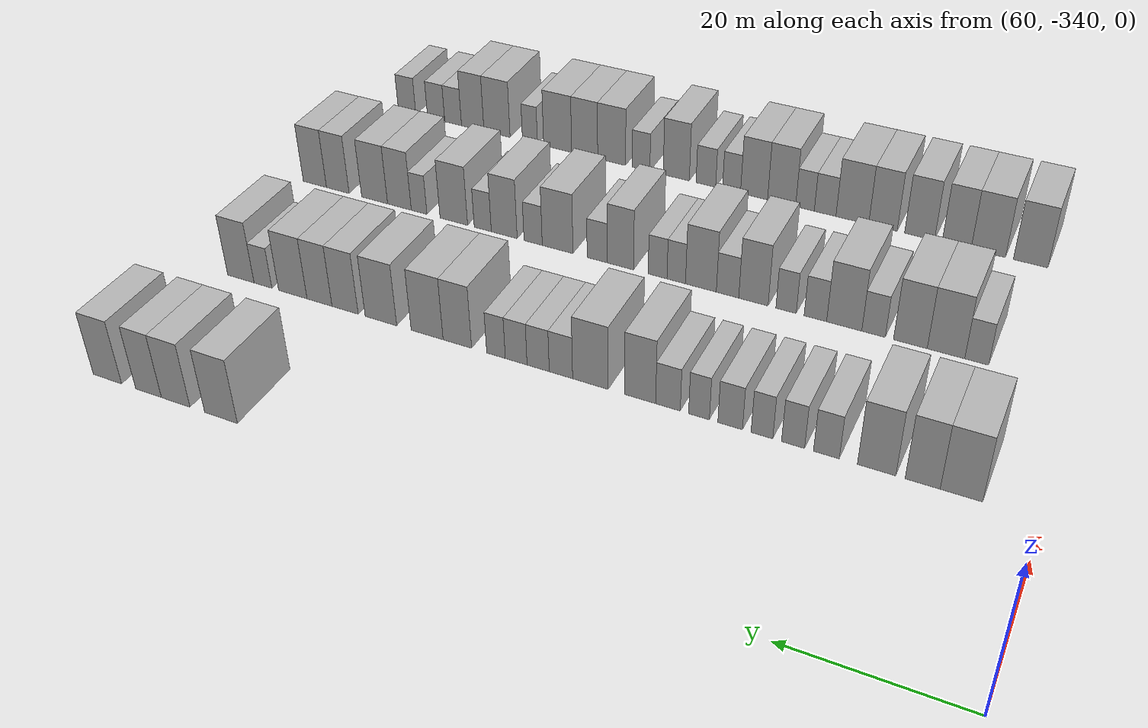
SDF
<sdf version="1.6">
 <world name="default">
  <model name="building_416">
   <static>1</static>
   <pose>69.0000 -254.4645 0 0.000000 0.000000 0.000000</pose>
   <link name="link">
    <pose>0 0 4.50 0 0 0</pose>
    <collision name="collision"><geometry><box><size>10.0000 4.4062 9.0000</size></box></geometry></collision>
    <visual name="visual">
     <cast_shadows>0</cast_shadows>
     <geometry><box><size>10.0000 4.4062 9.0000</size></box></geometry>
     <material>
      <script>
       <uri>model://HANNAS_wall/materials/scripts</uri>
       <uri>model://HANNAS_wall/materials/textures</uri>
       <name>vrc/HANNAS_wall</name>
      </script>
     </material>
    </visual>
   </link>
  </model>
  <model name="building_417">
   <static>1</static>
   <pose>69.0000 -248.2851 0 0.000000 0.000000 0.000000</pose>
   <link name="link">
    <pose>0 0 4.50 0 0 0</pose>
    <collision name="collision"><geometry><box><size>10.0000 3.9526 9.0000</size></box></geometry></collision>
    <visual name="visual">
     <cast_shadows>0</cast_shadows>
     <geometry><box><size>10.0000 3.9526 9.0000</size></box></geometry>
     <material>
      <script>
       <uri>model://HANNAS_wall/materials/scripts</uri>
       <uri>model://HANNAS_wall/materials/textures</uri>
       <name>vrc/HANNAS_wall</name>
      </script>
     </material>
    </visual>
   </link>
  </model>
  <model name="building_418">
   <static>1</static>
   <pose>69.0000 -244.5052 0 0.000000 0.000000 0.000000</pose>
   <link name="link">
    <pose>0 0 4.50 0 0 0</pose>
    <collision name="collision"><geometry><box><size>10.0000 3.6071 9.0000</size></box></geometry></collision>
    <visual name="visual">
     <cast_shadows>0</cast_shadows>
     <geometry><box><size>10.0000 3.6071 9.0000</size></box></geometry>
     <material>
      <script>
       <uri>model://HANNAS_wall/materials/scripts</uri>
       <uri>model://HANNAS_wall/materials/textures</uri>
       <name>vrc/HANNAS_wall</name>
      </script>
     </material>
    </visual>
   </link>
  </model>
  <model name="building_419">
   <static>1</static>
   <pose>69.0000 -238.6733 0 0.000000 0.000000 0.000000</pose>
   <link name="link">
    <pose>0 0 4.50 0 0 0</pose>
    <collision name="collision"><geometry><box><size>10.0000 4.0567 9.0000</size></box></geometry></collision>
    <visual name="visual">
     <cast_shadows>0</cast_shadows>
     <geometry><box><size>10.0000 4.0567 9.0000</size></box></geometry>
     <material>
      <script>
       <uri>model://HANNAS_wall/materials/scripts</uri>
       <uri>model://HANNAS_wall/materials/textures</uri>
       <name>vrc/HANNAS_wall</name>
      </script>
     </material>
    </visual>
   </link>
  </model>
  <model name="building_584">
   <static>1</static>
   <pose>91.0000 -331.6717 0 0.000000 0.000000 0.000000</pose>
   <link name="link">
    <pose>0 0 4.50 0 0 0</pose>
    <collision name="collision"><geometry><box><size>10.0000 4.4519 9.0000</size></box></geometry></collision>
    <visual name="visual">
     <cast_shadows>0</cast_shadows>
     <geometry><box><size>10.0000 4.4519 9.0000</size></box></geometry>
     <material>
      <script>
       <uri>model://HANNAS_wall/materials/scripts</uri>
       <uri>model://HANNAS_wall/materials/textures</uri>
       <name>vrc/HANNAS_wall</name>
      </script>
     </material>
    </visual>
   </link>
  </model>
  <model name="building_585">
   <static>1</static>
   <pose>91.0000 -327.5798 0 0.000000 0.000000 0.000000</pose>
   <link name="link">
    <pose>0 0 4.50 0 0 0</pose>
    <collision name="collision"><geometry><box><size>10.0000 3.7320 9.0000</size></box></geometry></collision>
    <visual name="visual">
     <cast_shadows>0</cast_shadows>
     <geometry><box><size>10.0000 3.7320 9.0000</size></box></geometry>
     <material>
      <script>
       <uri>model://HANNAS_wall/materials/scripts</uri>
       <uri>model://HANNAS_wall/materials/textures</uri>
       <name>vrc/HANNAS_wall</name>
      </script>
     </material>
    </visual>
   </link>
  </model>
  <model name="building_586">
   <static>1</static>
   <pose>91.0000 -322.6257 0 0.000000 0.000000 0.000000</pose>
   <link name="link">
    <pose>0 0 4.50 0 0 0</pose>
    <collision name="collision"><geometry><box><size>10.0000 4.1762 9.0000</size></box></geometry></collision>
    <visual name="visual">
     <cast_shadows>0</cast_shadows>
     <geometry><box><size>10.0000 4.1762 9.0000</size></box></geometry>
     <material>
      <script>
       <uri>model://HANNAS_wall/materials/scripts</uri>
       <uri>model://HANNAS_wall/materials/textures</uri>
       <name>vrc/HANNAS_wall</name>
      </script>
     </material>
    </visual>
   </link>
  </model>
  <model name="building_587">
   <static>1</static>
   <pose>91.0000 -317.0966 0 0.000000 0.000000 0.000000</pose>
   <link name="link">
    <pose>0 0 3.00 0 0 0</pose>
    <collision name="collision"><geometry><box><size>10.0000 2.8819 6.0000</size></box></geometry></collision>
    <visual name="visual">
     <cast_shadows>0</cast_shadows>
     <geometry><box><size>10.0000 2.8819 6.0000</size></box></geometry>
     <material>
      <script>
       <uri>model://HANNAS_wall/materials/scripts</uri>
       <uri>model://HANNAS_wall/materials/textures</uri>
       <name>vrc/HANNAS_wall</name>
      </script>
     </material>
    </visual>
   </link>
  </model>
  <model name="building_588">
   <static>1</static>
   <pose>91.0000 -313.3518 0 0.000000 0.000000 0.000000</pose>
   <link name="link">
    <pose>0 0 3.00 0 0 0</pose>
    <collision name="collision"><geometry><box><size>10.0000 2.6078 6.0000</size></box></geometry></collision>
    <visual name="visual">
     <cast_shadows>0</cast_shadows>
     <geometry><box><size>10.0000 2.6078 6.0000</size></box></geometry>
     <material>
      <script>
       <uri>model://HANNAS_wall/materials/scripts</uri>
       <uri>model://HANNAS_wall/materials/textures</uri>
       <name>vrc/HANNAS_wall</name>
      </script>
     </material>
    </visual>
   </link>
  </model>
  <model name="building_589">
   <static>1</static>
   <pose>91.0000 -309.8001 0 0.000000 0.000000 0.000000</pose>
   <link name="link">
    <pose>0 0 3.00 0 0 0</pose>
    <collision name="collision"><geometry><box><size>10.0000 2.4955 6.0000</size></box></geometry></collision>
    <visual name="visual">
     <cast_shadows>0</cast_shadows>
     <geometry><box><size>10.0000 2.4955 6.0000</size></box></geometry>
     <material>
      <script>
       <uri>model://HANNAS_wall/materials/scripts</uri>
       <uri>model://HANNAS_wall/materials/textures</uri>
       <name>vrc/HANNAS_wall</name>
      </script>
     </material>
    </visual>
   </link>
  </model>
  <model name="building_590">
   <static>1</static>
   <pose>91.0000 -306.1137 0 0.000000 0.000000 0.000000</pose>
   <link name="link">
    <pose>0 0 3.00 0 0 0</pose>
    <collision name="collision"><geometry><box><size>10.0000 2.8773 6.0000</size></box></geometry></collision>
    <visual name="visual">
     <cast_shadows>0</cast_shadows>
     <geometry><box><size>10.0000 2.8773 6.0000</size></box></geometry>
     <material>
      <script>
       <uri>model://HANNAS_wall/materials/scripts</uri>
       <uri>model://HANNAS_wall/materials/textures</uri>
       <name>vrc/HANNAS_wall</name>
      </script>
     </material>
    </visual>
   </link>
  </model>
  <model name="building_591">
   <static>1</static>
   <pose>91.0000 -302.4433 0 0.000000 0.000000 0.000000</pose>
   <link name="link">
    <pose>0 0 3.00 0 0 0</pose>
    <collision name="collision"><geometry><box><size>10.0000 2.4633 6.0000</size></box></geometry></collision>
    <visual name="visual">
     <cast_shadows>0</cast_shadows>
     <geometry><box><size>10.0000 2.4633 6.0000</size></box></geometry>
     <material>
      <script>
       <uri>model://HANNAS_wall/materials/scripts</uri>
       <uri>model://HANNAS_wall/materials/textures</uri>
       <name>vrc/HANNAS_wall</name>
      </script>
     </material>
    </visual>
   </link>
  </model>
  <model name="building_592">
   <static>1</static>
   <pose>91.0000 -298.7233 0 0.000000 0.000000 0.000000</pose>
   <link name="link">
    <pose>0 0 3.00 0 0 0</pose>
    <collision name="collision"><geometry><box><size>10.0000 2.9768 6.0000</size></box></geometry></collision>
    <visual name="visual">
     <cast_shadows>0</cast_shadows>
     <geometry><box><size>10.0000 2.9768 6.0000</size></box></geometry>
     <material>
      <script>
       <uri>model://HANNAS_wall/materials/scripts</uri>
       <uri>model://HANNAS_wall/materials/textures</uri>
       <name>vrc/HANNAS_wall</name>
      </script>
     </material>
    </visual>
   </link>
  </model>
  <model name="building_593">
   <static>1</static>
   <pose>91.0000 -295.3324 0 0.000000 0.000000 0.000000</pose>
   <link name="link">
    <pose>0 0 4.50 0 0 0</pose>
    <collision name="collision"><geometry><box><size>10.0000 3.8049 9.0000</size></box></geometry></collision>
    <visual name="visual">
     <cast_shadows>0</cast_shadows>
     <geometry><box><size>10.0000 3.8049 9.0000</size></box></geometry>
     <material>
      <script>
       <uri>model://HANNAS_wall/materials/scripts</uri>
       <uri>model://HANNAS_wall/materials/textures</uri>
       <name>vrc/HANNAS_wall</name>
      </script>
     </material>
    </visual>
   </link>
  </model>
  <model name="building_594">
   <static>1</static>
   <pose>91.0000 -289.1933 0 0.000000 0.000000 0.000000</pose>
   <link name="link">
    <pose>0 0 4.50 0 0 0</pose>
    <collision name="collision"><geometry><box><size>10.0000 4.4732 9.0000</size></box></geometry></collision>
    <visual name="visual">
     <cast_shadows>0</cast_shadows>
     <geometry><box><size>10.0000 4.4732 9.0000</size></box></geometry>
     <material>
      <script>
       <uri>model://HANNAS_wall/materials/scripts</uri>
       <uri>model://HANNAS_wall/materials/textures</uri>
       <name>vrc/HANNAS_wall</name>
      </script>
     </material>
    </visual>
   </link>
  </model>
  <model name="building_595">
   <static>1</static>
   <pose>91.0000 -285.4696 0 0.000000 0.000000 0.000000</pose>
   <link name="link">
    <pose>0 0 3.00 0 0 0</pose>
    <collision name="collision"><geometry><box><size>10.0000 2.9743 6.0000</size></box></geometry></collision>
    <visual name="visual">
     <cast_shadows>0</cast_shadows>
     <geometry><box><size>10.0000 2.9743 6.0000</size></box></geometry>
     <material>
      <script>
       <uri>model://HANNAS_wall/materials/scripts</uri>
       <uri>model://HANNAS_wall/materials/textures</uri>
       <name>vrc/HANNAS_wall</name>
      </script>
     </material>
    </visual>
   </link>
  </model>
  <model name="building_596">
   <static>1</static>
   <pose>91.0000 -282.5545 0 0.000000 0.000000 0.000000</pose>
   <link name="link">
    <pose>0 0 3.00 0 0 0</pose>
    <collision name="collision"><geometry><box><size>10.0000 2.8559 6.0000</size></box></geometry></collision>
    <visual name="visual">
     <cast_shadows>0</cast_shadows>
     <geometry><box><size>10.0000 2.8559 6.0000</size></box></geometry>
     <material>
      <script>
       <uri>model://HANNAS_wall/materials/scripts</uri>
       <uri>model://HANNAS_wall/materials/textures</uri>
       <name>vrc/HANNAS_wall</name>
      </script>
     </material>
    </visual>
   </link>
  </model>
  <model name="building_597">
   <static>1</static>
   <pose>91.0000 -279.7091 0 0.000000 0.000000 0.000000</pose>
   <link name="link">
    <pose>0 0 3.00 0 0 0</pose>
    <collision name="collision"><geometry><box><size>10.0000 2.8348 6.0000</size></box></geometry></collision>
    <visual name="visual">
     <cast_shadows>0</cast_shadows>
     <geometry><box><size>10.0000 2.8348 6.0000</size></box></geometry>
     <material>
      <script>
       <uri>model://HANNAS_wall/materials/scripts</uri>
       <uri>model://HANNAS_wall/materials/textures</uri>
       <name>vrc/HANNAS_wall</name>
      </script>
     </material>
    </visual>
   </link>
  </model>
  <model name="building_598">
   <static>1</static>
   <pose>91.0000 -277.0673 0 0.000000 0.000000 0.000000</pose>
   <link name="link">
    <pose>0 0 3.00 0 0 0</pose>
    <collision name="collision"><geometry><box><size>10.0000 2.4489 6.0000</size></box></geometry></collision>
    <visual name="visual">
     <cast_shadows>0</cast_shadows>
     <geometry><box><size>10.0000 2.4489 6.0000</size></box></geometry>
     <material>
      <script>
       <uri>model://HANNAS_wall/materials/scripts</uri>
       <uri>model://HANNAS_wall/materials/textures</uri>
       <name>vrc/HANNAS_wall</name>
      </script>
     </material>
    </visual>
   </link>
  </model>
  <model name="building_599">
   <static>1</static>
   <pose>91.0000 -271.9243 0 0.000000 0.000000 0.000000</pose>
   <link name="link">
    <pose>0 0 4.50 0 0 0</pose>
    <collision name="collision"><geometry><box><size>10.0000 3.8371 9.0000</size></box></geometry></collision>
    <visual name="visual">
     <cast_shadows>0</cast_shadows>
     <geometry><box><size>10.0000 3.8371 9.0000</size></box></geometry>
     <material>
      <script>
       <uri>model://HANNAS_wall/materials/scripts</uri>
       <uri>model://HANNAS_wall/materials/textures</uri>
       <name>vrc/HANNAS_wall</name>
      </script>
     </material>
    </visual>
   </link>
  </model>
  <model name="building_600">
   <static>1</static>
   <pose>91.0000 -267.8244 0 0.000000 0.000000 0.000000</pose>
   <link name="link">
    <pose>0 0 4.50 0 0 0</pose>
    <collision name="collision"><geometry><box><size>10.0000 4.3628 9.0000</size></box></geometry></collision>
    <visual name="visual">
     <cast_shadows>0</cast_shadows>
     <geometry><box><size>10.0000 4.3628 9.0000</size></box></geometry>
     <material>
      <script>
       <uri>model://HANNAS_wall/materials/scripts</uri>
       <uri>model://HANNAS_wall/materials/textures</uri>
       <name>vrc/HANNAS_wall</name>
      </script>
     </material>
    </visual>
   </link>
  </model>
  <model name="building_601">
   <static>1</static>
   <pose>91.0000 -261.4375 0 0.000000 0.000000 0.000000</pose>
   <link name="link">
    <pose>0 0 4.50 0 0 0</pose>
    <collision name="collision"><geometry><box><size>10.0000 4.4109 9.0000</size></box></geometry></collision>
    <visual name="visual">
     <cast_shadows>0</cast_shadows>
     <geometry><box><size>10.0000 4.4109 9.0000</size></box></geometry>
     <material>
      <script>
       <uri>model://HANNAS_wall/materials/scripts</uri>
       <uri>model://HANNAS_wall/materials/textures</uri>
       <name>vrc/HANNAS_wall</name>
      </script>
     </material>
    </visual>
   </link>
  </model>
  <model name="building_602">
   <static>1</static>
   <pose>91.0000 -256.3635 0 0.000000 0.000000 0.000000</pose>
   <link name="link">
    <pose>0 0 4.50 0 0 0</pose>
    <collision name="collision"><geometry><box><size>10.0000 3.7373 9.0000</size></box></geometry></collision>
    <visual name="visual">
     <cast_shadows>0</cast_shadows>
     <geometry><box><size>10.0000 3.7373 9.0000</size></box></geometry>
     <material>
      <script>
       <uri>model://HANNAS_wall/materials/scripts</uri>
       <uri>model://HANNAS_wall/materials/textures</uri>
       <name>vrc/HANNAS_wall</name>
      </script>
     </material>
    </visual>
   </link>
  </model>
  <model name="building_603">
   <static>1</static>
   <pose>91.0000 -252.6823 0 0.000000 0.000000 0.000000</pose>
   <link name="link">
    <pose>0 0 4.50 0 0 0</pose>
    <collision name="collision"><geometry><box><size>10.0000 3.6251 9.0000</size></box></geometry></collision>
    <visual name="visual">
     <cast_shadows>0</cast_shadows>
     <geometry><box><size>10.0000 3.6251 9.0000</size></box></geometry>
     <material>
      <script>
       <uri>model://HANNAS_wall/materials/scripts</uri>
       <uri>model://HANNAS_wall/materials/textures</uri>
       <name>vrc/HANNAS_wall</name>
      </script>
     </material>
    </visual>
   </link>
  </model>
  <model name="building_604">
   <static>1</static>
   <pose>91.0000 -248.7831 0 0.000000 0.000000 0.000000</pose>
   <link name="link">
    <pose>0 0 4.50 0 0 0</pose>
    <collision name="collision"><geometry><box><size>10.0000 4.1732 9.0000</size></box></geometry></collision>
    <visual name="visual">
     <cast_shadows>0</cast_shadows>
     <geometry><box><size>10.0000 4.1732 9.0000</size></box></geometry>
     <material>
      <script>
       <uri>model://HANNAS_wall/materials/scripts</uri>
       <uri>model://HANNAS_wall/materials/textures</uri>
       <name>vrc/HANNAS_wall</name>
      </script>
     </material>
    </visual>
   </link>
  </model>
  <model name="building_605">
   <static>1</static>
   <pose>91.0000 -244.3653 0 0.000000 0.000000 0.000000</pose>
   <link name="link">
    <pose>0 0 3.00 0 0 0</pose>
    <collision name="collision"><geometry><box><size>10.0000 2.6623 6.0000</size></box></geometry></collision>
    <visual name="visual">
     <cast_shadows>0</cast_shadows>
     <geometry><box><size>10.0000 2.6623 6.0000</size></box></geometry>
     <material>
      <script>
       <uri>model://HANNAS_wall/materials/scripts</uri>
       <uri>model://HANNAS_wall/materials/textures</uri>
       <name>vrc/HANNAS_wall</name>
      </script>
     </material>
    </visual>
   </link>
  </model>
  <model name="building_606">
   <static>1</static>
   <pose>91.0000 -241.0431 0 0.000000 0.000000 0.000000</pose>
   <link name="link">
    <pose>0 0 4.50 0 0 0</pose>
    <collision name="collision"><geometry><box><size>10.0000 3.9822 9.0000</size></box></geometry></collision>
    <visual name="visual">
     <cast_shadows>0</cast_shadows>
     <geometry><box><size>10.0000 3.9822 9.0000</size></box></geometry>
     <material>
      <script>
       <uri>model://HANNAS_wall/materials/scripts</uri>
       <uri>model://HANNAS_wall/materials/textures</uri>
       <name>vrc/HANNAS_wall</name>
      </script>
     </material>
    </visual>
   </link>
  </model>
  <model name="building_769">
   <static>1</static>
   <pose>113.0000 -328.2803 0 0.000000 0.000000 0.000000</pose>
   <link name="link">
    <pose>0 0 3.00 0 0 0</pose>
    <collision name="collision"><geometry><box><size>10.0000 2.7783 6.0000</size></box></geometry></collision>
    <visual name="visual">
     <cast_shadows>0</cast_shadows>
     <geometry><box><size>10.0000 2.7783 6.0000</size></box></geometry>
     <material>
      <script>
       <uri>model://HANNAS_wall/materials/scripts</uri>
       <uri>model://HANNAS_wall/materials/textures</uri>
       <name>vrc/HANNAS_wall</name>
      </script>
     </material>
    </visual>
   </link>
  </model>
  <model name="building_770">
   <static>1</static>
   <pose>113.0000 -324.6774 0 0.000000 0.000000 0.000000</pose>
   <link name="link">
    <pose>0 0 4.50 0 0 0</pose>
    <collision name="collision"><geometry><box><size>10.0000 4.4274 9.0000</size></box></geometry></collision>
    <visual name="visual">
     <cast_shadows>0</cast_shadows>
     <geometry><box><size>10.0000 4.4274 9.0000</size></box></geometry>
     <material>
      <script>
       <uri>model://HANNAS_wall/materials/scripts</uri>
       <uri>model://HANNAS_wall/materials/textures</uri>
       <name>vrc/HANNAS_wall</name>
      </script>
     </material>
    </visual>
   </link>
  </model>
  <model name="building_771">
   <static>1</static>
   <pose>113.0000 -320.4394 0 0.000000 0.000000 0.000000</pose>
   <link name="link">
    <pose>0 0 4.50 0 0 0</pose>
    <collision name="collision"><geometry><box><size>10.0000 4.0487 9.0000</size></box></geometry></collision>
    <visual name="visual">
     <cast_shadows>0</cast_shadows>
     <geometry><box><size>10.0000 4.0487 9.0000</size></box></geometry>
     <material>
      <script>
       <uri>model://HANNAS_wall/materials/scripts</uri>
       <uri>model://HANNAS_wall/materials/textures</uri>
       <name>vrc/HANNAS_wall</name>
      </script>
     </material>
    </visual>
   </link>
  </model>
  <model name="building_772">
   <static>1</static>
   <pose>113.0000 -315.9826 0 0.000000 0.000000 0.000000</pose>
   <link name="link">
    <pose>0 0 3.00 0 0 0</pose>
    <collision name="collision"><geometry><box><size>10.0000 2.8649 6.0000</size></box></geometry></collision>
    <visual name="visual">
     <cast_shadows>0</cast_shadows>
     <geometry><box><size>10.0000 2.8649 6.0000</size></box></geometry>
     <material>
      <script>
       <uri>model://HANNAS_wall/materials/scripts</uri>
       <uri>model://HANNAS_wall/materials/textures</uri>
       <name>vrc/HANNAS_wall</name>
      </script>
     </material>
    </visual>
   </link>
  </model>
  <model name="building_773">
   <static>1</static>
   <pose>113.0000 -312.3722 0 0.000000 0.000000 0.000000</pose>
   <link name="link">
    <pose>0 0 4.50 0 0 0</pose>
    <collision name="collision"><geometry><box><size>10.0000 4.3559 9.0000</size></box></geometry></collision>
    <visual name="visual">
     <cast_shadows>0</cast_shadows>
     <geometry><box><size>10.0000 4.3559 9.0000</size></box></geometry>
     <material>
      <script>
       <uri>model://HANNAS_wall/materials/scripts</uri>
       <uri>model://HANNAS_wall/materials/textures</uri>
       <name>vrc/HANNAS_wall</name>
      </script>
     </material>
    </visual>
   </link>
  </model>
  <model name="building_774">
   <static>1</static>
   <pose>113.0000 -308.7816 0 0.000000 0.000000 0.000000</pose>
   <link name="link">
    <pose>0 0 3.00 0 0 0</pose>
    <collision name="collision"><geometry><box><size>10.0000 2.8254 6.0000</size></box></geometry></collision>
    <visual name="visual">
     <cast_shadows>0</cast_shadows>
     <geometry><box><size>10.0000 2.8254 6.0000</size></box></geometry>
     <material>
      <script>
       <uri>model://HANNAS_wall/materials/scripts</uri>
       <uri>model://HANNAS_wall/materials/textures</uri>
       <name>vrc/HANNAS_wall</name>
      </script>
     </material>
    </visual>
   </link>
  </model>
  <model name="building_775">
   <static>1</static>
   <pose>113.0000 -305.0732 0 0.000000 0.000000 0.000000</pose>
   <link name="link">
    <pose>0 0 3.00 0 0 0</pose>
    <collision name="collision"><geometry><box><size>10.0000 2.5915 6.0000</size></box></geometry></collision>
    <visual name="visual">
     <cast_shadows>0</cast_shadows>
     <geometry><box><size>10.0000 2.5915 6.0000</size></box></geometry>
     <material>
      <script>
       <uri>model://HANNAS_wall/materials/scripts</uri>
       <uri>model://HANNAS_wall/materials/textures</uri>
       <name>vrc/HANNAS_wall</name>
      </script>
     </material>
    </visual>
   </link>
  </model>
  <model name="building_776">
   <static>1</static>
   <pose>113.0000 -300.8763 0 0.000000 0.000000 0.000000</pose>
   <link name="link">
    <pose>0 0 4.50 0 0 0</pose>
    <collision name="collision"><geometry><box><size>10.0000 3.8023 9.0000</size></box></geometry></collision>
    <visual name="visual">
     <cast_shadows>0</cast_shadows>
     <geometry><box><size>10.0000 3.8023 9.0000</size></box></geometry>
     <material>
      <script>
       <uri>model://HANNAS_wall/materials/scripts</uri>
       <uri>model://HANNAS_wall/materials/textures</uri>
       <name>vrc/HANNAS_wall</name>
      </script>
     </material>
    </visual>
   </link>
  </model>
  <model name="building_777">
   <static>1</static>
   <pose>113.0000 -297.5060 0 0.000000 0.000000 0.000000</pose>
   <link name="link">
    <pose>0 0 3.00 0 0 0</pose>
    <collision name="collision"><geometry><box><size>10.0000 2.9384 6.0000</size></box></geometry></collision>
    <visual name="visual">
     <cast_shadows>0</cast_shadows>
     <geometry><box><size>10.0000 2.9384 6.0000</size></box></geometry>
     <material>
      <script>
       <uri>model://HANNAS_wall/materials/scripts</uri>
       <uri>model://HANNAS_wall/materials/textures</uri>
       <name>vrc/HANNAS_wall</name>
      </script>
     </material>
    </visual>
   </link>
  </model>
  <model name="building_778">
   <static>1</static>
   <pose>113.0000 -293.9880 0 0.000000 0.000000 0.000000</pose>
   <link name="link">
    <pose>0 0 4.50 0 0 0</pose>
    <collision name="collision"><geometry><box><size>10.0000 4.0976 9.0000</size></box></geometry></collision>
    <visual name="visual">
     <cast_shadows>0</cast_shadows>
     <geometry><box><size>10.0000 4.0976 9.0000</size></box></geometry>
     <material>
      <script>
       <uri>model://HANNAS_wall/materials/scripts</uri>
       <uri>model://HANNAS_wall/materials/textures</uri>
       <name>vrc/HANNAS_wall</name>
      </script>
     </material>
    </visual>
   </link>
  </model>
  <model name="building_779">
   <static>1</static>
   <pose>113.0000 -290.6963 0 0.000000 0.000000 0.000000</pose>
   <link name="link">
    <pose>0 0 3.00 0 0 0</pose>
    <collision name="collision"><geometry><box><size>10.0000 2.4858 6.0000</size></box></geometry></collision>
    <visual name="visual">
     <cast_shadows>0</cast_shadows>
     <geometry><box><size>10.0000 2.4858 6.0000</size></box></geometry>
     <material>
      <script>
       <uri>model://HANNAS_wall/materials/scripts</uri>
       <uri>model://HANNAS_wall/materials/textures</uri>
       <name>vrc/HANNAS_wall</name>
      </script>
     </material>
    </visual>
   </link>
  </model>
  <model name="building_780">
   <static>1</static>
   <pose>113.0000 -288.1804 0 0.000000 0.000000 0.000000</pose>
   <link name="link">
    <pose>0 0 3.00 0 0 0</pose>
    <collision name="collision"><geometry><box><size>10.0000 2.5461 6.0000</size></box></geometry></collision>
    <visual name="visual">
     <cast_shadows>0</cast_shadows>
     <geometry><box><size>10.0000 2.5461 6.0000</size></box></geometry>
     <material>
      <script>
       <uri>model://HANNAS_wall/materials/scripts</uri>
       <uri>model://HANNAS_wall/materials/textures</uri>
       <name>vrc/HANNAS_wall</name>
      </script>
     </material>
    </visual>
   </link>
  </model>
  <model name="building_781">
   <static>1</static>
   <pose>113.0000 -283.0958 0 0.000000 0.000000 0.000000</pose>
   <link name="link">
    <pose>0 0 4.50 0 0 0</pose>
    <collision name="collision"><geometry><box><size>10.0000 3.6231 9.0000</size></box></geometry></collision>
    <visual name="visual">
     <cast_shadows>0</cast_shadows>
     <geometry><box><size>10.0000 3.6231 9.0000</size></box></geometry>
     <material>
      <script>
       <uri>model://HANNAS_wall/materials/scripts</uri>
       <uri>model://HANNAS_wall/materials/textures</uri>
       <name>vrc/HANNAS_wall</name>
      </script>
     </material>
    </visual>
   </link>
  </model>
  <model name="building_782">
   <static>1</static>
   <pose>113.0000 -279.8648 0 0.000000 0.000000 0.000000</pose>
   <link name="link">
    <pose>0 0 3.00 0 0 0</pose>
    <collision name="collision"><geometry><box><size>10.0000 2.8388 6.0000</size></box></geometry></collision>
    <visual name="visual">
     <cast_shadows>0</cast_shadows>
     <geometry><box><size>10.0000 2.8388 6.0000</size></box></geometry>
     <material>
      <script>
       <uri>model://HANNAS_wall/materials/scripts</uri>
       <uri>model://HANNAS_wall/materials/textures</uri>
       <name>vrc/HANNAS_wall</name>
      </script>
     </material>
    </visual>
   </link>
  </model>
  <model name="building_783">
   <static>1</static>
   <pose>113.0000 -274.2515 0 0.000000 0.000000 0.000000</pose>
   <link name="link">
    <pose>0 0 4.50 0 0 0</pose>
    <collision name="collision"><geometry><box><size>10.0000 4.3878 9.0000</size></box></geometry></collision>
    <visual name="visual">
     <cast_shadows>0</cast_shadows>
     <geometry><box><size>10.0000 4.3878 9.0000</size></box></geometry>
     <material>
      <script>
       <uri>model://HANNAS_wall/materials/scripts</uri>
       <uri>model://HANNAS_wall/materials/textures</uri>
       <name>vrc/HANNAS_wall</name>
      </script>
     </material>
    </visual>
   </link>
  </model>
  <model name="building_784">
   <static>1</static>
   <pose>113.0000 -270.7380 0 0.000000 0.000000 0.000000</pose>
   <link name="link">
    <pose>0 0 3.00 0 0 0</pose>
    <collision name="collision"><geometry><box><size>10.0000 2.6393 6.0000</size></box></geometry></collision>
    <visual name="visual">
     <cast_shadows>0</cast_shadows>
     <geometry><box><size>10.0000 2.6393 6.0000</size></box></geometry>
     <material>
      <script>
       <uri>model://HANNAS_wall/materials/scripts</uri>
       <uri>model://HANNAS_wall/materials/textures</uri>
       <name>vrc/HANNAS_wall</name>
      </script>
     </material>
    </visual>
   </link>
  </model>
  <model name="building_785">
   <static>1</static>
   <pose>113.0000 -266.5204 0 0.000000 0.000000 0.000000</pose>
   <link name="link">
    <pose>0 0 4.50 0 0 0</pose>
    <collision name="collision"><geometry><box><size>10.0000 3.7958 9.0000</size></box></geometry></collision>
    <visual name="visual">
     <cast_shadows>0</cast_shadows>
     <geometry><box><size>10.0000 3.7958 9.0000</size></box></geometry>
     <material>
      <script>
       <uri>model://HANNAS_wall/materials/scripts</uri>
       <uri>model://HANNAS_wall/materials/textures</uri>
       <name>vrc/HANNAS_wall</name>
      </script>
     </material>
    </visual>
   </link>
  </model>
  <model name="building_786">
   <static>1</static>
   <pose>113.0000 -263.3572 0 0.000000 0.000000 0.000000</pose>
   <link name="link">
    <pose>0 0 3.00 0 0 0</pose>
    <collision name="collision"><geometry><box><size>10.0000 2.5306 6.0000</size></box></geometry></collision>
    <visual name="visual">
     <cast_shadows>0</cast_shadows>
     <geometry><box><size>10.0000 2.5306 6.0000</size></box></geometry>
     <material>
      <script>
       <uri>model://HANNAS_wall/materials/scripts</uri>
       <uri>model://HANNAS_wall/materials/textures</uri>
       <name>vrc/HANNAS_wall</name>
      </script>
     </material>
    </visual>
   </link>
  </model>
  <model name="building_787">
   <static>1</static>
   <pose>113.0000 -259.0154 0 0.000000 0.000000 0.000000</pose>
   <link name="link">
    <pose>0 0 4.50 0 0 0</pose>
    <collision name="collision"><geometry><box><size>10.0000 4.1529 9.0000</size></box></geometry></collision>
    <visual name="visual">
     <cast_shadows>0</cast_shadows>
     <geometry><box><size>10.0000 4.1529 9.0000</size></box></geometry>
     <material>
      <script>
       <uri>model://HANNAS_wall/materials/scripts</uri>
       <uri>model://HANNAS_wall/materials/textures</uri>
       <name>vrc/HANNAS_wall</name>
      </script>
     </material>
    </visual>
   </link>
  </model>
  <model name="building_788">
   <static>1</static>
   <pose>113.0000 -253.7371 0 0.000000 0.000000 0.000000</pose>
   <link name="link">
    <pose>0 0 3.00 0 0 0</pose>
    <collision name="collision"><geometry><box><size>10.0000 2.4037 6.0000</size></box></geometry></collision>
    <visual name="visual">
     <cast_shadows>0</cast_shadows>
     <geometry><box><size>10.0000 2.4037 6.0000</size></box></geometry>
     <material>
      <script>
       <uri>model://HANNAS_wall/materials/scripts</uri>
       <uri>model://HANNAS_wall/materials/textures</uri>
       <name>vrc/HANNAS_wall</name>
      </script>
     </material>
    </visual>
   </link>
  </model>
  <model name="building_789">
   <static>1</static>
   <pose>113.0000 -250.6910 0 0.000000 0.000000 0.000000</pose>
   <link name="link">
    <pose>0 0 4.50 0 0 0</pose>
    <collision name="collision"><geometry><box><size>10.0000 3.6885 9.0000</size></box></geometry></collision>
    <visual name="visual">
     <cast_shadows>0</cast_shadows>
     <geometry><box><size>10.0000 3.6885 9.0000</size></box></geometry>
     <material>
      <script>
       <uri>model://HANNAS_wall/materials/scripts</uri>
       <uri>model://HANNAS_wall/materials/textures</uri>
       <name>vrc/HANNAS_wall</name>
      </script>
     </material>
    </visual>
   </link>
  </model>
  <model name="building_790">
   <static>1</static>
   <pose>113.0000 -246.8079 0 0.000000 0.000000 0.000000</pose>
   <link name="link">
    <pose>0 0 4.50 0 0 0</pose>
    <collision name="collision"><geometry><box><size>10.0000 4.0777 9.0000</size></box></geometry></collision>
    <visual name="visual">
     <cast_shadows>0</cast_shadows>
     <geometry><box><size>10.0000 4.0777 9.0000</size></box></geometry>
     <material>
      <script>
       <uri>model://HANNAS_wall/materials/scripts</uri>
       <uri>model://HANNAS_wall/materials/textures</uri>
       <name>vrc/HANNAS_wall</name>
      </script>
     </material>
    </visual>
   </link>
  </model>
  <model name="building_791">
   <static>1</static>
   <pose>113.0000 -240.9496 0 0.000000 0.000000 0.000000</pose>
   <link name="link">
    <pose>0 0 4.50 0 0 0</pose>
    <collision name="collision"><geometry><box><size>10.0000 3.6388 9.0000</size></box></geometry></collision>
    <visual name="visual">
     <cast_shadows>0</cast_shadows>
     <geometry><box><size>10.0000 3.6388 9.0000</size></box></geometry>
     <material>
      <script>
       <uri>model://HANNAS_wall/materials/scripts</uri>
       <uri>model://HANNAS_wall/materials/textures</uri>
       <name>vrc/HANNAS_wall</name>
      </script>
     </material>
    </visual>
   </link>
  </model>
  <model name="building_792">
   <static>1</static>
   <pose>113.0000 -237.2498 0 0.000000 0.000000 0.000000</pose>
   <link name="link">
    <pose>0 0 4.50 0 0 0</pose>
    <collision name="collision"><geometry><box><size>10.0000 3.7608 9.0000</size></box></geometry></collision>
    <visual name="visual">
     <cast_shadows>0</cast_shadows>
     <geometry><box><size>10.0000 3.7608 9.0000</size></box></geometry>
     <material>
      <script>
       <uri>model://HANNAS_wall/materials/scripts</uri>
       <uri>model://HANNAS_wall/materials/textures</uri>
       <name>vrc/HANNAS_wall</name>
      </script>
     </material>
    </visual>
   </link>
  </model>
  <model name="building_946">
   <static>1</static>
   <pose>135.0000 -330.1377 0 0.000000 0.000000 0.000000</pose>
   <link name="link">
    <pose>0 0 4.50 0 0 0</pose>
    <collision name="collision"><geometry><box><size>10.0000 4.3421 9.0000</size></box></geometry></collision>
    <visual name="visual">
     <cast_shadows>0</cast_shadows>
     <geometry><box><size>10.0000 4.3421 9.0000</size></box></geometry>
     <material>
      <script>
       <uri>model://HANNAS_wall/materials/scripts</uri>
       <uri>model://HANNAS_wall/materials/textures</uri>
       <name>vrc/HANNAS_wall</name>
      </script>
     </material>
    </visual>
   </link>
  </model>
  <model name="building_947">
   <static>1</static>
   <pose>135.0000 -324.7616 0 0.000000 0.000000 0.000000</pose>
   <link name="link">
    <pose>0 0 4.50 0 0 0</pose>
    <collision name="collision"><geometry><box><size>10.0000 4.4102 9.0000</size></box></geometry></collision>
    <visual name="visual">
     <cast_shadows>0</cast_shadows>
     <geometry><box><size>10.0000 4.4102 9.0000</size></box></geometry>
     <material>
      <script>
       <uri>model://HANNAS_wall/materials/scripts</uri>
       <uri>model://HANNAS_wall/materials/textures</uri>
       <name>vrc/HANNAS_wall</name>
      </script>
     </material>
    </visual>
   </link>
  </model>
  <model name="building_948">
   <static>1</static>
   <pose>135.0000 -320.6775 0 0.000000 0.000000 0.000000</pose>
   <link name="link">
    <pose>0 0 4.50 0 0 0</pose>
    <collision name="collision"><geometry><box><size>10.0000 3.7579 9.0000</size></box></geometry></collision>
    <visual name="visual">
     <cast_shadows>0</cast_shadows>
     <geometry><box><size>10.0000 3.7579 9.0000</size></box></geometry>
     <material>
      <script>
       <uri>model://HANNAS_wall/materials/scripts</uri>
       <uri>model://HANNAS_wall/materials/textures</uri>
       <name>vrc/HANNAS_wall</name>
      </script>
     </material>
    </visual>
   </link>
  </model>
  <model name="building_949">
   <static>1</static>
   <pose>135.0000 -315.8226 0 0.000000 0.000000 0.000000</pose>
   <link name="link">
    <pose>0 0 4.50 0 0 0</pose>
    <collision name="collision"><geometry><box><size>10.0000 3.9519 9.0000</size></box></geometry></collision>
    <visual name="visual">
     <cast_shadows>0</cast_shadows>
     <geometry><box><size>10.0000 3.9519 9.0000</size></box></geometry>
     <material>
      <script>
       <uri>model://HANNAS_wall/materials/scripts</uri>
       <uri>model://HANNAS_wall/materials/textures</uri>
       <name>vrc/HANNAS_wall</name>
      </script>
     </material>
    </visual>
   </link>
  </model>
  <model name="building_950">
   <static>1</static>
   <pose>135.0000 -310.9340 0 0.000000 0.000000 0.000000</pose>
   <link name="link">
    <pose>0 0 4.50 0 0 0</pose>
    <collision name="collision"><geometry><box><size>10.0000 3.8253 9.0000</size></box></geometry></collision>
    <visual name="visual">
     <cast_shadows>0</cast_shadows>
     <geometry><box><size>10.0000 3.8253 9.0000</size></box></geometry>
     <material>
      <script>
       <uri>model://HANNAS_wall/materials/scripts</uri>
       <uri>model://HANNAS_wall/materials/textures</uri>
       <name>vrc/HANNAS_wall</name>
      </script>
     </material>
    </visual>
   </link>
  </model>
  <model name="building_951">
   <static>1</static>
   <pose>135.0000 -306.7810 0 0.000000 0.000000 0.000000</pose>
   <link name="link">
    <pose>0 0 4.50 0 0 0</pose>
    <collision name="collision"><geometry><box><size>10.0000 4.4806 9.0000</size></box></geometry></collision>
    <visual name="visual">
     <cast_shadows>0</cast_shadows>
     <geometry><box><size>10.0000 4.4806 9.0000</size></box></geometry>
     <material>
      <script>
       <uri>model://HANNAS_wall/materials/scripts</uri>
       <uri>model://HANNAS_wall/materials/textures</uri>
       <name>vrc/HANNAS_wall</name>
      </script>
     </material>
    </visual>
   </link>
  </model>
  <model name="building_952">
   <static>1</static>
   <pose>135.0000 -303.0432 0 0.000000 0.000000 0.000000</pose>
   <link name="link">
    <pose>0 0 3.00 0 0 0</pose>
    <collision name="collision"><geometry><box><size>10.0000 2.9950 6.0000</size></box></geometry></collision>
    <visual name="visual">
     <cast_shadows>0</cast_shadows>
     <geometry><box><size>10.0000 2.9950 6.0000</size></box></geometry>
     <material>
      <script>
       <uri>model://HANNAS_wall/materials/scripts</uri>
       <uri>model://HANNAS_wall/materials/textures</uri>
       <name>vrc/HANNAS_wall</name>
      </script>
     </material>
    </visual>
   </link>
  </model>
  <model name="building_953">
   <static>1</static>
   <pose>135.0000 -300.2428 0 0.000000 0.000000 0.000000</pose>
   <link name="link">
    <pose>0 0 3.00 0 0 0</pose>
    <collision name="collision"><geometry><box><size>10.0000 2.6058 6.0000</size></box></geometry></collision>
    <visual name="visual">
     <cast_shadows>0</cast_shadows>
     <geometry><box><size>10.0000 2.6058 6.0000</size></box></geometry>
     <material>
      <script>
       <uri>model://HANNAS_wall/materials/scripts</uri>
       <uri>model://HANNAS_wall/materials/textures</uri>
       <name>vrc/HANNAS_wall</name>
      </script>
     </material>
    </visual>
   </link>
  </model>
  <model name="building_954">
   <static>1</static>
   <pose>135.0000 -296.9559 0 0.000000 0.000000 0.000000</pose>
   <link name="link">
    <pose>0 0 4.50 0 0 0</pose>
    <collision name="collision"><geometry><box><size>10.0000 3.9680 9.0000</size></box></geometry></collision>
    <visual name="visual">
     <cast_shadows>0</cast_shadows>
     <geometry><box><size>10.0000 3.9680 9.0000</size></box></geometry>
     <material>
      <script>
       <uri>model://HANNAS_wall/materials/scripts</uri>
       <uri>model://HANNAS_wall/materials/textures</uri>
       <name>vrc/HANNAS_wall</name>
      </script>
     </material>
    </visual>
   </link>
  </model>
  <model name="building_955">
   <static>1</static>
   <pose>135.0000 -293.0335 0 0.000000 0.000000 0.000000</pose>
   <link name="link">
    <pose>0 0 4.50 0 0 0</pose>
    <collision name="collision"><geometry><box><size>10.0000 3.8768 9.0000</size></box></geometry></collision>
    <visual name="visual">
     <cast_shadows>0</cast_shadows>
     <geometry><box><size>10.0000 3.8768 9.0000</size></box></geometry>
     <material>
      <script>
       <uri>model://HANNAS_wall/materials/scripts</uri>
       <uri>model://HANNAS_wall/materials/textures</uri>
       <name>vrc/HANNAS_wall</name>
      </script>
     </material>
    </visual>
   </link>
  </model>
  <model name="building_956">
   <static>1</static>
   <pose>135.0000 -289.7907 0 0.000000 0.000000 0.000000</pose>
   <link name="link">
    <pose>0 0 3.00 0 0 0</pose>
    <collision name="collision"><geometry><box><size>10.0000 2.6089 6.0000</size></box></geometry></collision>
    <visual name="visual">
     <cast_shadows>0</cast_shadows>
     <geometry><box><size>10.0000 2.6089 6.0000</size></box></geometry>
     <material>
      <script>
       <uri>model://HANNAS_wall/materials/scripts</uri>
       <uri>model://HANNAS_wall/materials/textures</uri>
       <name>vrc/HANNAS_wall</name>
      </script>
     </material>
    </visual>
   </link>
  </model>
  <model name="building_957">
   <static>1</static>
   <pose>135.0000 -286.0504 0 0.000000 0.000000 0.000000</pose>
   <link name="link">
    <pose>0 0 3.00 0 0 0</pose>
    <collision name="collision"><geometry><box><size>10.0000 2.8718 6.0000</size></box></geometry></collision>
    <visual name="visual">
     <cast_shadows>0</cast_shadows>
     <geometry><box><size>10.0000 2.8718 6.0000</size></box></geometry>
     <material>
      <script>
       <uri>model://HANNAS_wall/materials/scripts</uri>
       <uri>model://HANNAS_wall/materials/textures</uri>
       <name>vrc/HANNAS_wall</name>
      </script>
     </material>
    </visual>
   </link>
  </model>
  <model name="building_958">
   <static>1</static>
   <pose>135.0000 -281.6675 0 0.000000 0.000000 0.000000</pose>
   <link name="link">
    <pose>0 0 4.50 0 0 0</pose>
    <collision name="collision"><geometry><box><size>10.0000 3.8939 9.0000</size></box></geometry></collision>
    <visual name="visual">
     <cast_shadows>0</cast_shadows>
     <geometry><box><size>10.0000 3.8939 9.0000</size></box></geometry>
     <material>
      <script>
       <uri>model://HANNAS_wall/materials/scripts</uri>
       <uri>model://HANNAS_wall/materials/textures</uri>
       <name>vrc/HANNAS_wall</name>
      </script>
     </material>
    </visual>
   </link>
  </model>
  <model name="building_959">
   <static>1</static>
   <pose>135.0000 -276.3738 0 0.000000 0.000000 0.000000</pose>
   <link name="link">
    <pose>0 0 3.00 0 0 0</pose>
    <collision name="collision"><geometry><box><size>10.0000 2.6937 6.0000</size></box></geometry></collision>
    <visual name="visual">
     <cast_shadows>0</cast_shadows>
     <geometry><box><size>10.0000 2.6937 6.0000</size></box></geometry>
     <material>
      <script>
       <uri>model://HANNAS_wall/materials/scripts</uri>
       <uri>model://HANNAS_wall/materials/textures</uri>
       <name>vrc/HANNAS_wall</name>
      </script>
     </material>
    </visual>
   </link>
  </model>
  <model name="building_960">
   <static>1</static>
   <pose>135.0000 -271.8851 0 0.000000 0.000000 0.000000</pose>
   <link name="link">
    <pose>0 0 4.50 0 0 0</pose>
    <collision name="collision"><geometry><box><size>10.0000 4.2836 9.0000</size></box></geometry></collision>
    <visual name="visual">
     <cast_shadows>0</cast_shadows>
     <geometry><box><size>10.0000 4.2836 9.0000</size></box></geometry>
     <material>
      <script>
       <uri>model://HANNAS_wall/materials/scripts</uri>
       <uri>model://HANNAS_wall/materials/textures</uri>
       <name>vrc/HANNAS_wall</name>
      </script>
     </material>
    </visual>
   </link>
  </model>
  <model name="building_961">
   <static>1</static>
   <pose>135.0000 -267.7113 0 0.000000 0.000000 0.000000</pose>
   <link name="link">
    <pose>0 0 4.50 0 0 0</pose>
    <collision name="collision"><geometry><box><size>10.0000 4.0639 9.0000</size></box></geometry></collision>
    <visual name="visual">
     <cast_shadows>0</cast_shadows>
     <geometry><box><size>10.0000 4.0639 9.0000</size></box></geometry>
     <material>
      <script>
       <uri>model://HANNAS_wall/materials/scripts</uri>
       <uri>model://HANNAS_wall/materials/textures</uri>
       <name>vrc/HANNAS_wall</name>
      </script>
     </material>
    </visual>
   </link>
  </model>
  <model name="building_962">
   <static>1</static>
   <pose>135.0000 -263.4677 0 0.000000 0.000000 0.000000</pose>
   <link name="link">
    <pose>0 0 4.50 0 0 0</pose>
    <collision name="collision"><geometry><box><size>10.0000 4.4234 9.0000</size></box></geometry></collision>
    <visual name="visual">
     <cast_shadows>0</cast_shadows>
     <geometry><box><size>10.0000 4.4234 9.0000</size></box></geometry>
     <material>
      <script>
       <uri>model://HANNAS_wall/materials/scripts</uri>
       <uri>model://HANNAS_wall/materials/textures</uri>
       <name>vrc/HANNAS_wall</name>
      </script>
     </material>
    </visual>
   </link>
  </model>
  <model name="building_963">
   <static>1</static>
   <pose>135.0000 -259.0559 0 0.000000 0.000000 0.000000</pose>
   <link name="link">
    <pose>0 0 3.00 0 0 0</pose>
    <collision name="collision"><geometry><box><size>10.0000 2.4004 6.0000</size></box></geometry></collision>
    <visual name="visual">
     <cast_shadows>0</cast_shadows>
     <geometry><box><size>10.0000 2.4004 6.0000</size></box></geometry>
     <material>
      <script>
       <uri>model://HANNAS_wall/materials/scripts</uri>
       <uri>model://HANNAS_wall/materials/textures</uri>
       <name>vrc/HANNAS_wall</name>
      </script>
     </material>
    </visual>
   </link>
  </model>
  <model name="building_964">
   <static>1</static>
   <pose>135.0000 -253.7181 0 0.000000 0.000000 0.000000</pose>
   <link name="link">
    <pose>0 0 4.50 0 0 0</pose>
    <collision name="collision"><geometry><box><size>10.0000 4.2751 9.0000</size></box></geometry></collision>
    <visual name="visual">
     <cast_shadows>0</cast_shadows>
     <geometry><box><size>10.0000 4.2751 9.0000</size></box></geometry>
     <material>
      <script>
       <uri>model://HANNAS_wall/materials/scripts</uri>
       <uri>model://HANNAS_wall/materials/textures</uri>
       <name>vrc/HANNAS_wall</name>
      </script>
     </material>
    </visual>
   </link>
  </model>
  <model name="building_965">
   <static>1</static>
   <pose>135.0000 -249.7268 0 0.000000 0.000000 0.000000</pose>
   <link name="link">
    <pose>0 0 4.50 0 0 0</pose>
    <collision name="collision"><geometry><box><size>10.0000 3.7075 9.0000</size></box></geometry></collision>
    <visual name="visual">
     <cast_shadows>0</cast_shadows>
     <geometry><box><size>10.0000 3.7075 9.0000</size></box></geometry>
     <material>
      <script>
       <uri>model://HANNAS_wall/materials/scripts</uri>
       <uri>model://HANNAS_wall/materials/textures</uri>
       <name>vrc/HANNAS_wall</name>
      </script>
     </material>
    </visual>
   </link>
  </model>
  <model name="building_966">
   <static>1</static>
   <pose>135.0000 -246.4743 0 0.000000 0.000000 0.000000</pose>
   <link name="link">
    <pose>0 0 3.00 0 0 0</pose>
    <collision name="collision"><geometry><box><size>10.0000 2.7976 6.0000</size></box></geometry></collision>
    <visual name="visual">
     <cast_shadows>0</cast_shadows>
     <geometry><box><size>10.0000 2.7976 6.0000</size></box></geometry>
     <material>
      <script>
       <uri>model://HANNAS_wall/materials/scripts</uri>
       <uri>model://HANNAS_wall/materials/textures</uri>
       <name>vrc/HANNAS_wall</name>
      </script>
     </material>
    </visual>
   </link>
  </model>
  <model name="building_967">
   <static>1</static>
   <pose>135.0000 -243.6284 0 0.000000 0.000000 0.000000</pose>
   <link name="link">
    <pose>0 0 3.00 0 0 0</pose>
    <collision name="collision"><geometry><box><size>10.0000 2.8941 6.0000</size></box></geometry></collision>
    <visual name="visual">
     <cast_shadows>0</cast_shadows>
     <geometry><box><size>10.0000 2.8941 6.0000</size></box></geometry>
     <material>
      <script>
       <uri>model://HANNAS_wall/materials/scripts</uri>
       <uri>model://HANNAS_wall/materials/textures</uri>
       <name>vrc/HANNAS_wall</name>
      </script>
     </material>
    </visual>
   </link>
  </model>
  <model name="building_968">
   <static>1</static>
   <pose>135.0000 -238.6927 0 0.000000 0.000000 0.000000</pose>
   <link name="link">
    <pose>0 0 3.00 0 0 0</pose>
    <collision name="collision"><geometry><box><size>10.0000 2.9774 6.0000</size></box></geometry></collision>
    <visual name="visual">
     <cast_shadows>0</cast_shadows>
     <geometry><box><size>10.0000 2.9774 6.0000</size></box></geometry>
     <material>
      <script>
       <uri>model://HANNAS_wall/materials/scripts</uri>
       <uri>model://HANNAS_wall/materials/textures</uri>
       <name>vrc/HANNAS_wall</name>
      </script>
     </material>
    </visual>
   </link>
  </model>
 </world>
</sdf>
